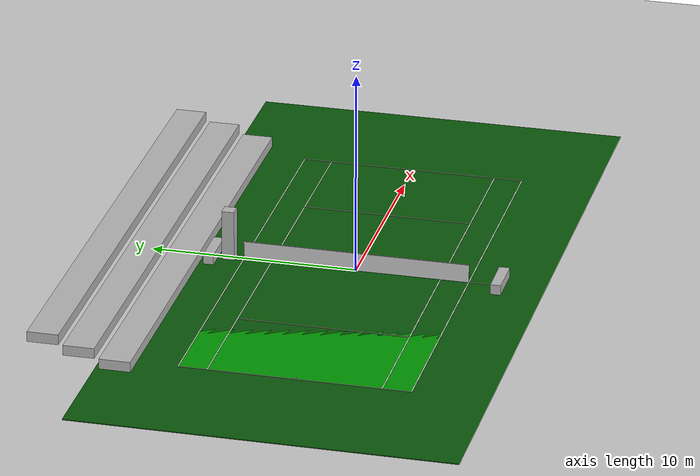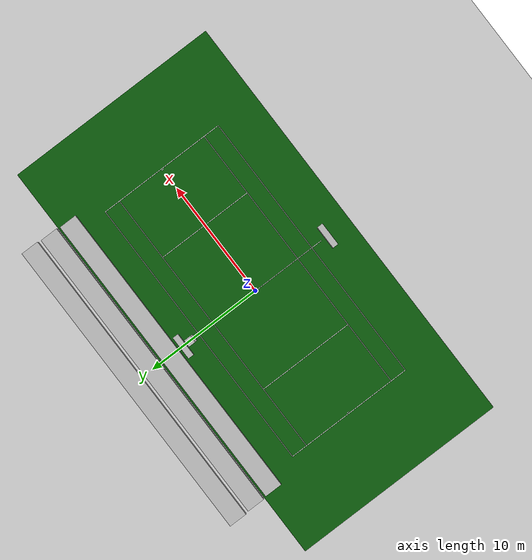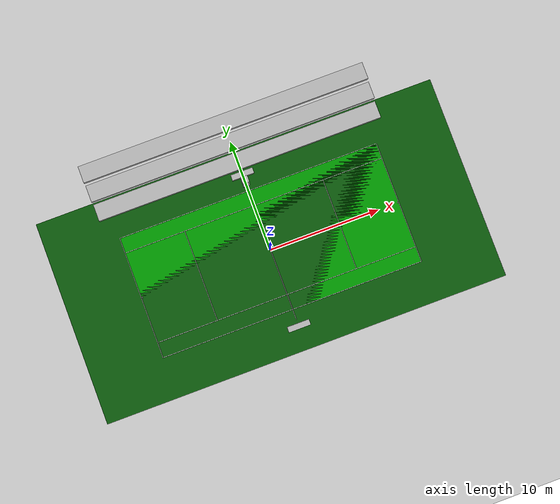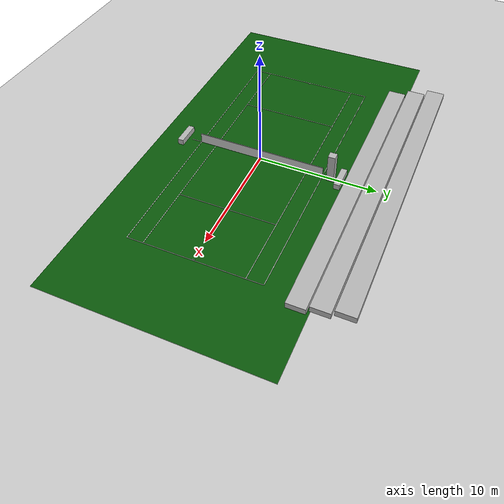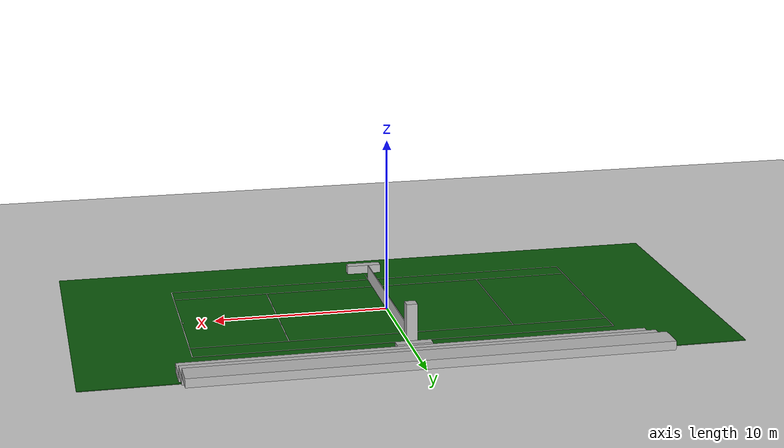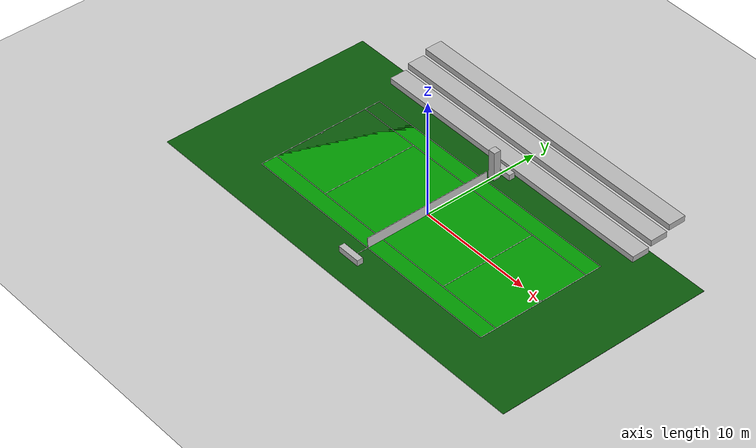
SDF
<?xml version="1.0" ?>
<sdf version="1.8">
  <world name="tennis_world">

    <!-- ===== Physics & environment settings ===== -->
    <physics name='1ms' type='ignored'>
      <max_step_size>0.003</max_step_size>
      <real_time_factor>1</real_time_factor>
      <real_time_update_rate>1000</real_time_update_rate>
    </physics>
    <gravity>0 0 -9.8</gravity>
    <magnetic_field>6e-06 2.3e-05 -4.2e-05</magnetic_field>
    <atmosphere type='adiabatic'/>
    <scene>
      <ambient>0.4 0.4 0.4 1</ambient>
      <background>0.7 0.7 0.7 1</background>
      <shadows>1</shadows>
    </scene>

    <!-- ===== Required Gazebo plugins ===== -->
    <plugin name='ignition::gazebo::systems::Physics' filename='ignition-gazebo-physics-system'/>
    <plugin name='ignition::gazebo::systems::UserCommands' filename='ignition-gazebo-user-commands-system'/>
    <plugin name='ignition::gazebo::systems::SceneBroadcaster' filename='ignition-gazebo-scene-broadcaster-system'/>
    <plugin name='ignition::gazebo::systems::Contact' filename='ignition-gazebo-contact-system'/>

    <!-- ===== Sunlight ===== -->
    <light type="directional" name="sun">
      <cast_shadows>true</cast_shadows>
      <pose>11.85 0 0 0 0 0</pose>
      <diffuse>1 1 1 1</diffuse>
      <specular>0.1 0.1 0.1 1</specular>
      <attenuation>
        <range>1000</range>
        <constant>0.9</constant>
        <linear>0.01</linear>
        <quadratic>0.001</quadratic>
      </attenuation>
      <direction>-0.5 0.2 -1</direction>
    </light>

    <!-- ===== Hidden infinite ground plane (ensures robot contact) ===== -->
    <model name='ground_plane'>
      <static>1</static>
      <link name='link'>
        <collision name='collision'>
          <geometry>
            <plane>
              <normal>0 0 1</normal>
              <size>100 100</size>
            </plane>
          </geometry>
        </collision>
        <visual name='visual'>
          <geometry>
            <plane>
              <normal>0 0 1</normal>
              <size>100 100</size>
            </plane>
          </geometry>
          <material>
            <ambient>0.8 0.8 0.8 1</ambient>
            <diffuse>0.8 0.8 0.8 1</diffuse>
          </material>
        </visual>
      </link>
    </model>

    <!-- ===== Tennis Court Scene ===== -->
    <model name="tennis_court_scene">
      <static>true</static>
      <pose>0 0 0 0 0 0</pose>

      <!-- Outer apron -->
      <link name="outer_apron">
        <collision name="outer_apron_collision">
          <geometry><box><size>36.57 18.29 0.10</size></box></geometry>
        </collision>
        <visual name="outer_apron_visual">
          <geometry><box><size>36.57 18.29 0.10</size></box></geometry>
          <material>
            <ambient>0.02 0.25 0.02 1</ambient>
            <diffuse>0.04 0.35 0.04 1</diffuse>
          </material>
        </visual>
        <pose>0 0 -0.05 0 0 0</pose>
      </link>

      <!-- Main court -->
      <link name="court_ground">
        <collision name="court_collision">
          <geometry><box><size>23.77 10.97 0.10</size></box></geometry>
          <surface><friction><ode><mu>1.0</mu><mu2>1.0</mu2></ode></friction></surface>
        </collision>
        <visual name="court_visual">
          <geometry><box><size>23.77 10.97 0.10</size></box></geometry>
          <material>
            <ambient>0.0 0.50 0.0 1</ambient>
            <diffuse>0.0 0.60 0.0 1</diffuse>
          </material>
        </visual>
        <pose>0 0 -0.05 0 0 0</pose>
      </link>

      <!-- Court lines -->
      <link name="court_lines">
        <pose>0 0 0.005 0 0 0</pose>

        <!-- Baselines -->
        <visual name="baseline_positive_x">
          <geometry><box><size>0.05 10.97 0.01</size></box></geometry>
          <material><ambient>1 1 1 1</ambient></material>
          <pose>11.885 0 0 0 0 0</pose>
        </visual>
        <visual name="baseline_negative_x">
          <geometry><box><size>0.05 10.97 0.01</size></box></geometry>
          <material><ambient>1 1 1 1</ambient></material>
          <pose>-11.885 0 0 0 0 0</pose>
        </visual>

        <!-- Doubles sidelines -->
        <visual name="doubles_sideline_posy">
          <geometry><box><size>23.77 0.05 0.01</size></box></geometry>
          <material><ambient>1 1 1 1</ambient></material>
          <pose>0 5.485 0 0 0 0</pose>
        </visual>
        <visual name="doubles_sideline_negy">
          <geometry><box><size>23.77 0.05 0.01</size></box></geometry>
          <material><ambient>1 1 1 1</ambient></material>
          <pose>0 -5.485 0 0 0 0</pose>
        </visual>

        <!-- Singles sidelines -->
        <visual name="singles_sideline_posy">
          <geometry><box><size>23.77 0.05 0.01</size></box></geometry>
          <material><ambient>1 1 1 1</ambient></material>
          <pose>0 4.115 0 0 0 0</pose>
        </visual>
        <visual name="singles_sideline_negy">
          <geometry><box><size>23.77 0.05 0.01</size></box></geometry>
          <material><ambient>1 1 1 1</ambient></material>
          <pose>0 -4.115 0 0 0 0</pose>
        </visual>

        <!-- Service lines -->
        <visual name="service_line_posx">
          <geometry><box><size>0.05 8.23 0.01</size></box></geometry>
          <material><ambient>1 1 1 1</ambient></material>
          <pose>6.40 0 0 0 0 0</pose>
        </visual>
        <visual name="service_line_negx">
          <geometry><box><size>0.05 8.23 0.01</size></box></geometry>
          <material><ambient>1 1 1 1</ambient></material>
          <pose>-6.40 0 0 0 0 0</pose>
        </visual>

        <!-- Center service line -->
        <visual name="center_service_line">
          <geometry><box><size>12.80 0.05 0.01</size></box></geometry>
          <material><ambient>1 1 1 1</ambient></material>
          <pose>0 0 0 0 0 1.57079632679</pose>
        </visual>

        <!-- Center marks -->
        <visual name="center_mark_posx">
          <geometry><box><size>0.20 0.05 0.01</size></box></geometry>
          <material><ambient>1 1 1 1</ambient></material>
          <pose>11.785 0 0 0 0 1.57079632679</pose>
        </visual>
        <visual name="center_mark_negx">
          <geometry><box><size>0.20 0.05 0.01</size></box></geometry>
          <material><ambient>1 1 1 1</ambient></material>
          <pose>-11.785 0 0 0 0 1.57079632679</pose>
        </visual>
      </link>

      <!-- Net -->
      <link name="net">
        <collision name="net_collision">
          <geometry><box><size>0.05 10.97 0.91</size></box></geometry>
        </collision>
        <visual name="net_visual">
          <geometry><box><size>0.05 10.97 0.91</size></box></geometry>
          <material><ambient>0.8 0.8 0.8 1</ambient></material>
        </visual>
        <pose>0 0 0.455 0 0 0</pose>
      </link>

      <!-- Benches -->
      <link name="bench_posy">
        <collision name="bench_posy_collision"><geometry><box><size>2.0 0.5 0.5</size></box></geometry></collision>
        <visual name="bench_posy_visual"><geometry><box><size>2.0 0.5 0.5</size></box></geometry></visual>
        <pose>0 6.985 0.25 0 0 0</pose>
      </link>
      <link name="bench_negy">
        <collision name="bench_negy_collision"><geometry><box><size>2.0 0.5 0.5</size></box></geometry></collision>
        <visual name="bench_negy_visual"><geometry><box><size>2.0 0.5 0.5</size></box></geometry></visual>
        <pose>0 -6.985 0.25 0 0 0</pose>
      </link>

      <!-- Umpire chair -->
      <link name="umpire_chair">
        <collision name="chair_tower_collision"><geometry><box><size>0.6 0.6 2.5</size></box></geometry></collision>
        <visual name="chair_tower_visual"><geometry><box><size>0.6 0.6 2.5</size></box></geometry></visual>
        <pose>0 6.2 1.25 0 0 0</pose>
      </link>

      <!-- Audience stand -->
      <link name="audience_stand">
        <visual name="row1"><geometry><box><size>26.0 1.5 0.5</size></box></geometry><pose>0 8.2 0.25 0 0 0</pose></visual>
        <visual name="row2"><geometry><box><size>26.0 1.5 0.5</size></box></geometry><pose>0 9.9 0.75 0 0 0</pose></visual>
        <visual name="row3"><geometry><box><size>26.0 1.5 0.5</size></box></geometry><pose>0 11.6 1.25 0 0 0</pose></visual>
      </link>
    </model>

  </world>
</sdf>
